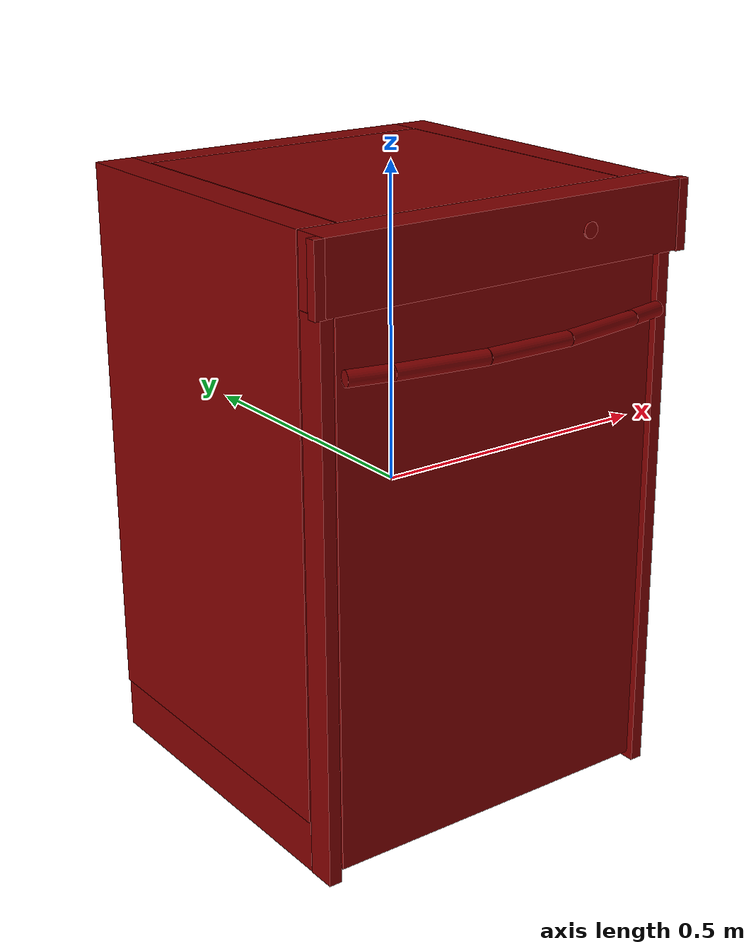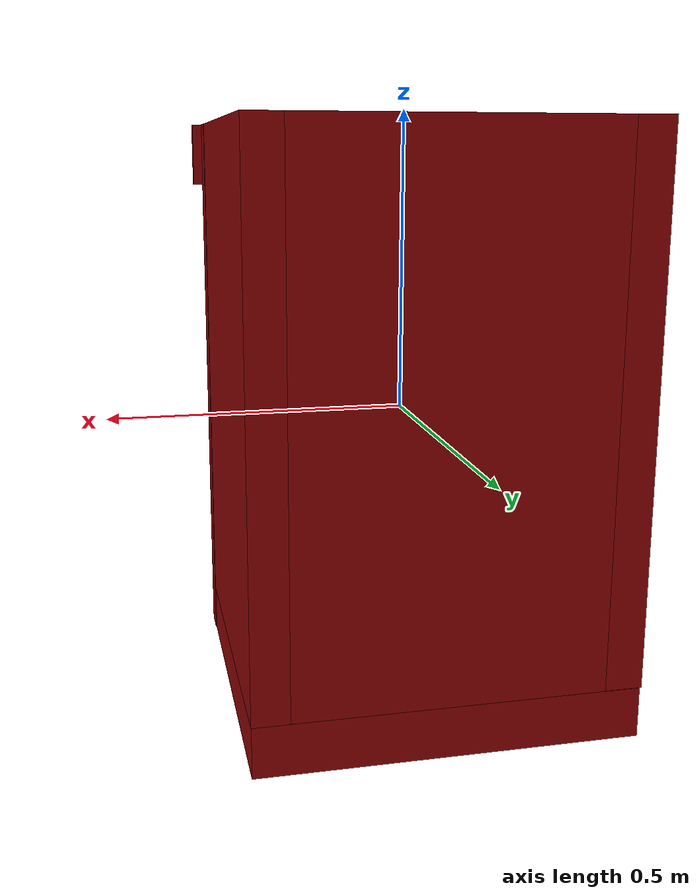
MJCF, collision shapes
<mujoco model="model">
  <compiler angle="radian"/>
  <asset>
    <mesh file="visuals/Body001.obj" name="Body001_vis"/>
    <mesh file="visuals/Button001.obj" name="Button001_vis"/>
    <mesh file="visuals/Door001.obj" name="Door001_vis"/>
    <mesh file="visuals/Shelf001.obj" name="Shelf001_vis"/>
    <mesh file="visuals/Shelf002.obj" name="Shelf002_vis"/>
    <texture file="visuals/T_BC001.png" name="Body001_material" type="2d"/>
    <material name="Body001_material" rgba="1 1 1 1.0" texture="Body001_material" shininess="1" specular="1"/>
    <texture file="visuals/T_BC001.png" name="Button001_material" type="2d"/>
    <material name="Button001_material" rgba="1 1 1 1.0" texture="Button001_material" shininess="1" specular="1"/>
    <texture file="visuals/T_BC001.png" name="Door001_material" type="2d"/>
    <material name="Door001_material" rgba="1 1 1 1.0" texture="Door001_material" shininess="1" specular="1"/>
    <texture file="visuals/T_BC001.png" name="Shelf001_material" type="2d"/>
    <material name="Shelf001_material" rgba="1 1 1 1.0" texture="Shelf001_material" shininess="1" specular="1"/>
    <texture file="visuals/T_BC001.png" name="Shelf002_material" type="2d"/>
    <material name="Shelf002_material" rgba="1 1 1 1.0" texture="Shelf002_material" shininess="1" specular="1"/>
  </asset>
  <default>
    <default class="visual">
      <geom conaffinity="0" contype="0" group="1" type="mesh"/>
    </default>
    <default class="collision">
      <geom group="0" rgba="0.5 0 0 0.5"/>
    </default>
    <default class="spawn">
      <geom group="0" rgba="1 1 1 0.5" contype="0" conaffinity="0"/>
      <site group="0" rgba="1 1 1 0.5"/>
    </default>
    <default class="region">
      <geom group="1" conaffinity="0" contype="0" rgba="0 1 0 0"/>
    </default>
  </default>
  <worldbody>
    <body>
      <body name="object">
        <geom mesh="Body001_vis" type="mesh" solimp="0.998 0.998 0.001" solref="0.001 1" density="100" friction="0.95 0.3 0.1" class="visual" material="Body001_material"/>
        <geom class="collision" type="box" pos="0.000761 0.026814 0.369475" size="0.2478541135787964 0.24850201606750488 0.11212799698114395" quat="0.7071067094802856 0.0 0.0 -0.7071068286895752"/>
        <geom class="collision" type="box" pos="0.000231 0.054495 -0.440075" size="0.2755351662635803 0.3092680871486664 0.04152759909629822" quat="0.7071067094802856 0.0 0.0 -0.7071068286895752"/>
        <geom class="collision" type="box" pos="0.280333 0.054495 0.041484" size="0.2755351662635803 0.44011926651000977 0.029816357418894768" quat="0.5000000596046448 -0.5 0.4999999701976776 -0.5"/>
        <geom class="collision" type="box" pos="-0.280629 0.054495 0.041724" size="0.2755351662635803 0.4398794174194336 0.031101802363991737" quat="0.5000000596046448 -0.5 0.4999999701976776 -0.5"/>
        <geom class="collision" type="box" pos="0.000122 -0.252899 0.428723" size="0.02995537780225277 0.31064343452453613 0.05288010090589523" quat="0.7071067094802856 0.0 0.0 -0.7071068286895752"/>
        <geom class="collision" type="box" pos="0.000202 0.303110 0.041576" size="0.0269201397895813 0.2507558763027191 0.44002699851989746" quat="0.7071067094802856 0.0 0.0 -0.7071068286895752"/>
        <geom class="collision" type="box" pos="-0.318493 -0.276016 0.428723" size="0.008550232276320457 0.008194297552108765 0.052880026400089264" quat="0.7071067094802856 0.0 0.0 -0.7071068286895752"/>
        <geom class="collision" type="box" pos="0.318207 -0.276016 0.428084" size="0.008550381287932396 0.008480876684188843 0.05351901799440384" quat="0.7071067094802856 0.0 0.0 -0.7071068286895752"/>
        <geom class="collision" type="box" pos="0.300473 -0.246358 -0.053262" size="0.023414932191371918 0.010292038321495056 0.4283409118652344" quat="0.7071067094802856 0.0 0.0 -0.7071068286895752"/>
        <geom class="collision" type="box" pos="-0.299462 -0.246358 -0.053262" size="0.023414932191371918 0.010292038321495056 0.4283409118652344" quat="0.7071067094802856 0.0 0.0 -0.7071068286895752"/>
        <geom class="collision" type="box" pos="-0.246126 0.044161 -0.070054" size="0.23556995391845703 0.004066057503223419 0.013230979442596436" quat="0.7071067094802856 0.0 0.0 -0.7071068286895752"/>
        <geom class="collision" type="box" pos="-0.242834 0.044161 0.019191" size="0.23556995391845703 0.007358148694038391 0.013230979442596436" quat="0.7071067094802856 0.0 0.0 -0.7071068286895752"/>
        <geom class="collision" type="box" pos="-0.242834 0.044161 -0.152721" size="0.23556995391845703 0.007358148694038391 0.013230979442596436" quat="0.7071067094802856 0.0 0.0 -0.7071068286895752"/>
        <geom class="collision" type="box" pos="-0.242834 0.044161 -0.263867" size="0.23556995391845703 0.007358148694038391 0.013230979442596436" quat="0.7071067094802856 0.0 0.0 -0.7071068286895752"/>
        <geom class="collision" type="box" pos="-0.246690 0.044161 0.135010" size="0.23556995391845703 0.0035016986075788736 0.013230979442596436" quat="0.7071067094802856 0.0 0.0 -0.7071068286895752"/>
        <geom class="collision" type="box" pos="0.246581 0.044161 0.135010" size="0.23556995391845703 0.0024580140598118305 0.013230979442596436" quat="0.7071067094802856 0.0 0.0 -0.7071068286895752"/>
        <geom class="collision" type="box" pos="0.241681 0.044161 -0.263867" size="0.23556995391845703 0.007358148694038391 0.013230979442596436" quat="0.7071067094802856 0.0 0.0 -0.7071068286895752"/>
        <geom class="collision" type="box" pos="0.243423 0.044161 -0.152721" size="0.23556995391845703 0.007358148694038391 0.013230979442596436" quat="0.7071067094802856 0.0 0.0 -0.7071068286895752"/>
        <geom class="collision" type="box" pos="0.242818 0.044161 0.019191" size="0.23556995391845703 0.006220400333404541 0.013230979442596436" quat="0.7071067094802856 0.0 0.0 -0.7071068286895752"/>
        <geom class="collision" type="box" pos="0.247694 0.044161 -0.070054" size="0.23556995391845703 0.003602289129048586 0.013230979442596436" quat="0.7071067094802856 0.0 0.0 -0.7071068286895752"/>
        <body name="Button001">
          <joint axis="0.0 1.0 0.0" pos="0.137011 -0.285924 0.430429" limited="true" name="Button001_joint" range="0.0 0.003" type="slide" damping="1" frictionloss="1" armature=".01" stiffness="5"/>
          <geom mesh="Button001_vis" type="mesh" solimp="0.998 0.998 0.001" solref="0.001 1" density="100" friction="0.95 0.3 0.1" class="visual" material="Button001_material"/>
          <geom class="collision" type="cylinder" pos="0.136893 -0.286765 0.430377" size="0.012102506123483181 0.001343357376754284" quat="0.5000000596046448 0.5000000596046448 0.4999999403953552 -0.4999999701976776"/>
        </body>
        <body name="Door001">
          <joint axis="1.0 0.0 0.0" pos="-0.000338 -0.268845 -0.481436" limited="true" name="Door001_joint" range="0.0 0.5235987755982988" type="hinge" damping="1" frictionloss="1" armature=".01" stiffness="0.05"/>
          <geom mesh="Door001_vis" type="mesh" solimp="0.998 0.998 0.001" solref="0.001 1" density="100" friction="0.95 0.3 0.1" class="visual" material="Door001_material"/>
          <geom class="collision" type="box" pos="-0.002963 -0.248184 -0.045351" size="0.2825357913970947 0.020260117948055267 0.4170806407928467" quat="1.0 0.0 0.0 0.0"/>
          <geom class="collision" type="cylinder" pos="0.000481 -0.317808 0.291553" size="0.011969594284892082 0.07225752621889114" quat="0.7071068286895752 1.2101618374060763e-08 0.7071067690849304 -1.2101617485882343e-08"/>
          <geom class="collision" type="cylinder" pos="-0.143237 -0.307821 0.291553" size="0.011969594284892082 0.07225753366947174" quat="0.7052760124206543 0.05085095390677452 0.7052759528160095 -0.05085095018148422"/>
          <geom class="collision" type="cylinder" pos="0.143353 -0.307143 0.291553" size="0.011969594284892082 0.07225753366947174" quat="0.705083429813385 -0.053454648703336716 0.7050833702087402 0.05345464497804642"/>
          <geom class="collision" type="cylinder" pos="0.245104 -0.288455 0.291553" size="0.011969594284892082 0.034941304475069046" quat="0.7034791111946106 -0.07153445482254028 0.7034790515899658 0.07153444737195969"/>
          <geom class="collision" type="cylinder" pos="-0.248240 -0.288608 0.291553" size="0.011969594284892082 0.03300582244992256" quat="0.7033578753471375 0.07271655648946762 0.7033578753471375 -0.07271656394004822"/>
        </body>
        <body name="Shelf001">
          <joint axis="0.0 -1.0 0.0" pos="0.000241 0.043463 0.067916" limited="true" name="Shelf001_joint" range="0.0 0.3" type="slide" damping="1" frictionloss="1" armature=".01" stiffness="0.05"/>
          <geom mesh="Shelf001_vis" type="mesh" solimp="0.998 0.998 0.001" solref="0.001 1" density="100" friction="0.95 0.3 0.1" class="visual" material="Shelf001_material"/>
          <geom class="collision" type="box" pos="0.005344 0.269333 0.094940" size="0.23139093816280365 0.004483231343328953 0.04543870687484741" quat="1.0 -8.146033536604591e-08 0.0 0.0"/>
          <geom class="collision" type="box" pos="-0.232470 0.041912 0.094940" size="0.008715564385056496 0.22417668998241425 0.04543868824839592" quat="1.0 -8.146033536604591e-08 0.0 0.0"/>
          <geom class="collision" type="box" pos="0.231908 0.043032 0.094940" size="0.011143060401082039 0.22511255741119385 0.04543868824839592" quat="1.0 -8.146033536604591e-08 0.0 0.0"/>
          <geom class="collision" type="box" pos="0.004333 -0.184552 0.094940" size="0.22921821475028992 0.005447784438729286 0.045438703149557114" quat="1.0 -8.146033536604591e-08 0.0 0.0"/>
          <geom class="collision" type="box" pos="0.002454 0.046611 0.026953" size="0.2316136509180069 0.22678729891777039 0.02163473144173622" quat="1.0 -8.146033536604591e-08 0.0 0.0"/>
        </body>
        <body name="Shelf002">
          <joint axis="0.0 -1.0 0.0" pos="0.002240 0.043463 -0.114232" limited="true" name="Shelf002_joint" range="0.0 0.2" type="slide" damping="1" frictionloss="1" armature=".01" stiffness="0.05"/>
          <geom mesh="Shelf002_vis" type="mesh" solimp="0.998 0.998 0.001" solref="0.001 1" density="100" friction="0.95 0.3 0.1" class="visual" material="Shelf002_material"/>
          <geom class="collision" type="box" pos="0.005344 0.269333 -0.091678" size="0.23139093816280365 0.004483231343328953 0.04543870687484741" quat="1.0 -8.146033536604591e-08 0.0 0.0"/>
          <geom class="collision" type="box" pos="-0.232470 0.041912 -0.091678" size="0.008715564385056496 0.22417668998241425 0.04543868824839592" quat="1.0 -8.146033536604591e-08 0.0 0.0"/>
          <geom class="collision" type="box" pos="0.231908 0.043032 -0.091678" size="0.011143060401082039 0.22511255741119385 0.04543868824839592" quat="1.0 -8.146033536604591e-08 0.0 0.0"/>
          <geom class="collision" type="box" pos="0.004333 -0.184552 -0.091678" size="0.22921821475028992 0.005447784438729286 0.045438703149557114" quat="1.0 -8.146033536604591e-08 0.0 0.0"/>
          <geom class="collision" type="box" pos="0.002454 0.046611 -0.156233" size="0.2316136509180069 0.22678729891777039 0.01820191740989685" quat="1.0 -8.146033536604591e-08 0.0 0.0"/>
        </body>
        <geom class="region" name="reg_main" type="box" pos="0.0 0.022732500000000017 0.0" size="0.326688 0.30729850000000003 0.481603"/>
        <geom class="region" name="reg_int" type="box" pos="0.0014435000000000003 0.03990599999999998 -0.06573199999999998" size="0.24209550000000002 0.26408 0.33514299999999997"/>
      </body>
    </body>
  </worldbody>
  <actuator>
    <motor name="Button001_joint_actuator" joint="Button001_joint" gear="0.5"/>
    <motor name="Door001_joint_actuator" joint="Door001_joint" gear="50"/>
    <motor name="Shelf001_joint_actuator" joint="Shelf001_joint" gear="50"/>
    <motor name="Shelf002_joint_actuator" joint="Shelf002_joint" gear="50"/>
  </actuator>
</mujoco>
